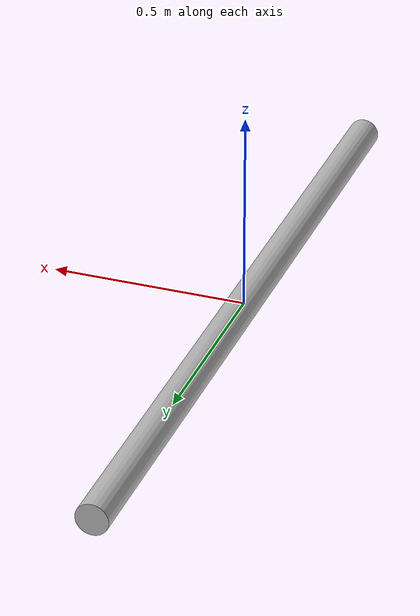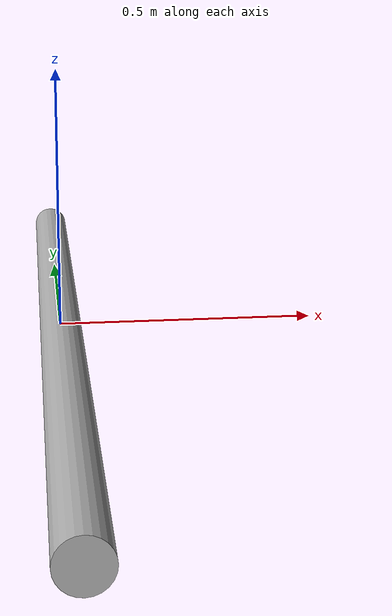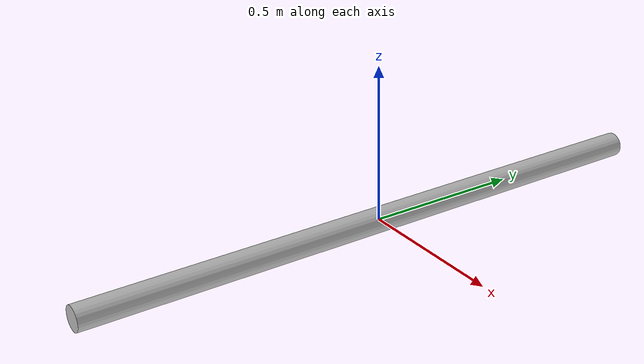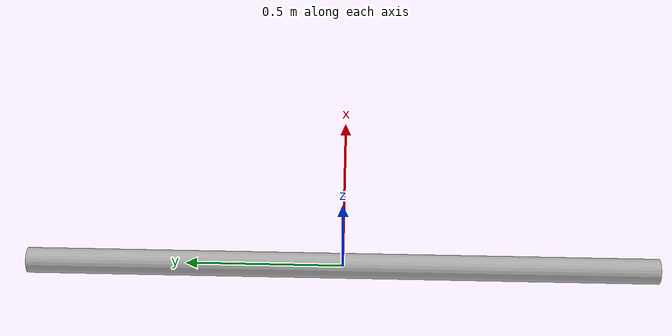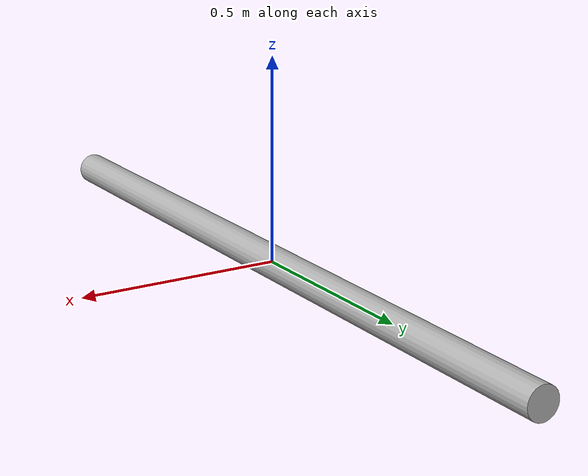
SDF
<sdf version="1.4">
<model name="pipe">
    <static>true</static>
    <link name="pipe">
       <pose>0 0 0.0 0 1.57 1.57</pose>
       <collision name="collision">
            <geometry>
              <cylinder>
                     <radius>0.04</radius>
                     <length>2</length>
              </cylinder>
            </geometry>
                <surface>
                    <bounce>
                        <restitution_coefficient>0.01</restitution_coefficient>
                        <threshold>5</threshold>
                    </bounce>
                    <friction>
                        <ode>
                            <mu>10</mu>
                            <mu2>10</mu2>
                        </ode>
                    </friction>
                    <contact>
                        <ode>
                            <soft_cfm>0.001</soft_cfm>
                            <kp>100000</kp>
                            <kd>1000</kd>
                        </ode>
                    </contact>
            </surface>
       </collision>

       <visual name="visual">
        <geometry>
             <cylinder>
                     <radius>0.04</radius>
                     <length>2</length>
              </cylinder>
        </geometry>
      </visual>

    </link>

  </model>

</sdf>
